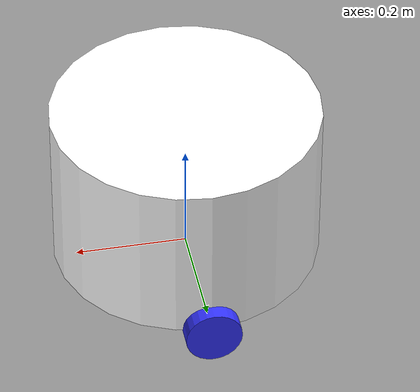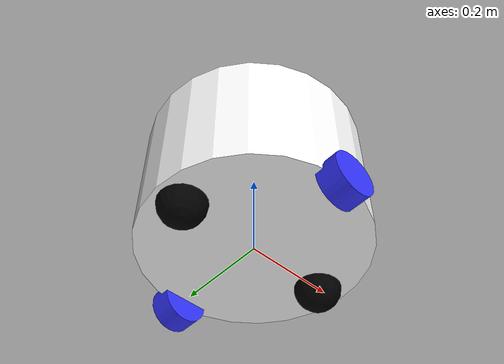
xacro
<?xml version="1.0"?>
<robot xmlns:xacro="http://www.ros.org/wiki/xacro" >

    <xacro:include filename='inertial_macros.xacro'/>

    <!-- COLOR -->

    <material name="white">
        <color rgba="1 1 1 1"/>
    </material>

    <material name="orange">
        <color rgba="1 0.3 0.1 1"/>
    </material>

    <material name="blue">
        <color rgba="0.2 0.2 1 1"/>
    </material>

    <material name="black">
        <color rgba="0 0 0 1"/>
    </material>

    <link name="base_link">

    </link>

    <!-- CHASSIS -->

    <joint name="chassis_joint" type="fixed">
        <parent link="base_link"/>
        <child link="chassis"/>
        <origin xyz="0 0 0"/>
    </joint>

    <link name="chassis">
        <visual>
            <origin xyz="0 0 0.15"/>
            <geometry>
                <cylinder radius="0.24" length="0.3"/>
            </geometry>
            <material name="white"/>
        </visual>
        <collision>
            <origin xyz="0 0 0.15"/>
            <geometry>
                <cylinder radius="0.24" length="0.3"/>
            </geometry>
            <material name="white"/>
        </collision>
        <xacro:inertial_cylinder mass="0.5" radius="0.24" length="0.3">
            <origin xyz="0 0 0.15" rpy="0 0 0"/>
        </xacro:inertial_cylinder>
    </link>

    <gazebo reference="chassis">
        <material>Gazebo/White</material>
    </gazebo>

    <!-- LEFT WHEEL -->

    <joint name="left_wheel_joint" type="continuous">
        <parent link="base_link"/>
        <child link="left_wheel"/>
        <origin xyz="0 0.24 0" rpy="-${pi/2} 0 0"/>
        <axis xyz="0 0 1"/>
    </joint>

    <link name="left_wheel">
        <visual>
            <geometry>
                <cylinder length="0.05" radius="0.05" />
            </geometry>
            <material name="blue"/>
        </visual>
        <collision>
            <geometry>
                <cylinder length="0.05" radius="0.05" />
            </geometry>
            <material name="blue"/>
        </collision>
        <xacro:inertial_cylinder mass="1" length="0.05" radius="0.05">
            <origin xyz="0 0 0" rpy="0 0 0"/>
        </xacro:inertial_cylinder>
    </link>

    <gazebo reference="left_wheel">
        <material>Gazebo/Blue</material>
    </gazebo>

    <!-- RIGHT WHEEL -->

    <joint name="right_wheel_joint" type="continuous">
        <parent link="base_link"/>
        <child link="right_wheel"/>
        <origin xyz="0 -0.24 0" rpy="${pi/2} 0 0"/>
        <axis xyz="0 0 -1"/>
    </joint>

    <link name="right_wheel">
        <visual>
            <geometry>
                <cylinder length="0.05" radius="0.05" />
            </geometry>
            <material name="blue"/>
        </visual>
        <collision>
            <geometry>
                <cylinder length="0.05" radius="0.05" />
            </geometry>
            <material name="blue"/>
        </collision>
        <xacro:inertial_cylinder mass="1" length="0.05" radius="0.05">
            <origin xyz="0 0 0" rpy="0 0 0"/>
        </xacro:inertial_cylinder>
    </link>

    <gazebo reference="right_wheel">
        <material>Gazebo/Blue</material>
    </gazebo>

    <!-- CASTER WHEEL 1 -->

    <joint name="caster_wheel_1_joint" type="fixed">
        <parent link="chassis"/>
        <child link="caster_wheel_1"/>
        <origin xyz="0.18 0 0" />
    </joint>

    <link name="caster_wheel_1">
        <visual>
            <geometry>
                <sphere radius="0.05" />
            </geometry>
            <material name="black"/>
        </visual>
        <collision>
            <geometry>
                <sphere radius="0.05" />
            </geometry>
            <material name="black"/>
        </collision>
        <xacro:inertial_sphere mass="0.1" radius="0.05">
            <origin xyz="0 0 0" rpy="0 0 0"/>
        </xacro:inertial_sphere>
    </link>

    <gazebo reference="caster_wheel_1">
        <material>Gazebo/Black</material>
        <mu1 value="0.001"/>
        <mu2 value="0.001"/>
    </gazebo>

    <!-- CASTER WHEEL 2 -->

    <joint name="caster_wheel_2_joint" type="fixed">
        <parent link="chassis"/>
        <child link="caster_wheel_2"/>
        <origin xyz="-0.18 0 0" />
    </joint>

    <link name="caster_wheel_2">
        <visual>
            <geometry>
                <sphere radius="0.05" />
            </geometry>
            <material name="black"/>
        </visual>
        <collision>
            <geometry>
                <sphere radius="0.05" />
            </geometry>
            <material name="black"/>
        </collision>
        <xacro:inertial_sphere mass="0.1" radius="0.05">
            <origin xyz="0 0 0" rpy="0 0 0"/>
        </xacro:inertial_sphere>
    </link>

    <gazebo reference="caster_wheel_2">
        <material>Gazebo/Black</material>
        <mu1 value="0.001"/>
<mu2 value="0.001"/>
    </gazebo>

</robot>
